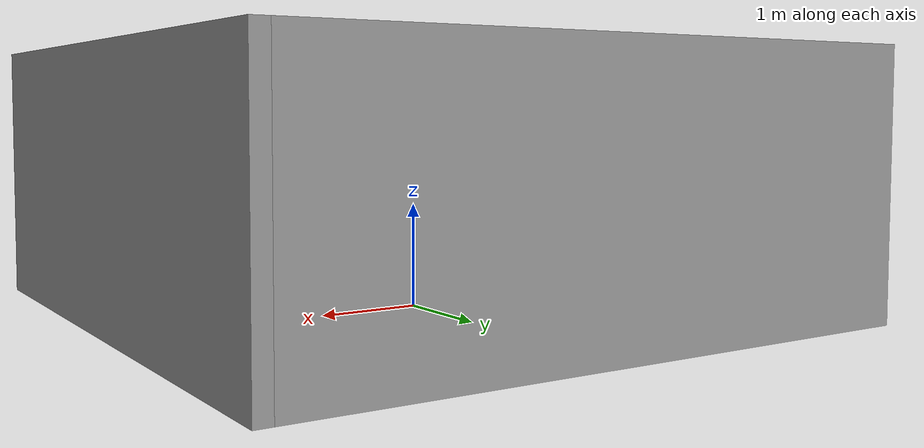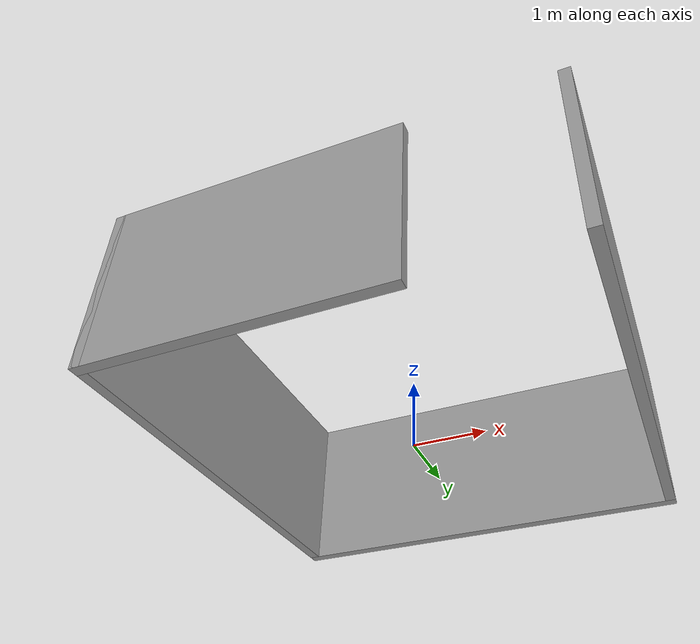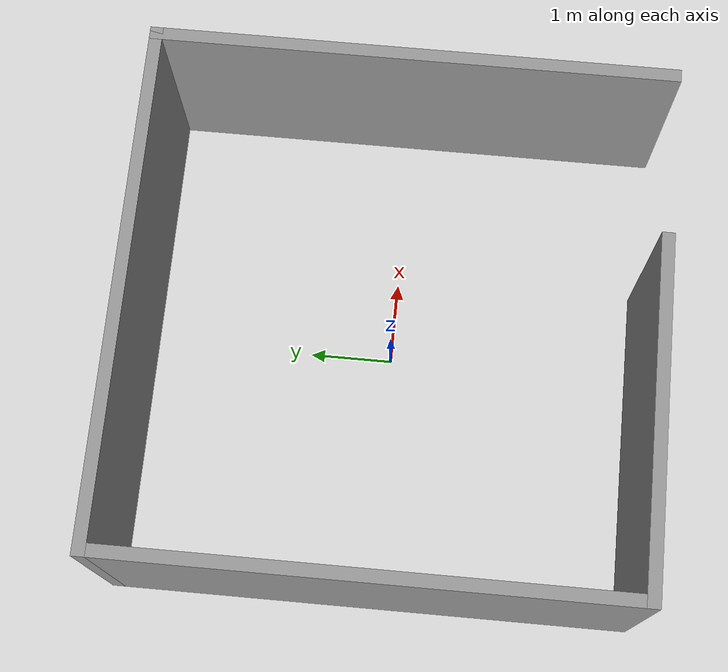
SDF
<?xml version='1.0'?>
<sdf version='1.6'>
  <model name='4w1d'>
    <pose frame=''>0 0 0 0 -0 0</pose>
    <link name='Wall_1'>
      <collision name='Wall_1_Collision'>
        <geometry>
          <box>
            <size>6.15 0.15 2.5</size>
          </box>
        </geometry>
        <pose frame=''>0 0 1.25 0 -0 0</pose>
      </collision>
      <visual name='Wall_1_Visual'>
        <pose frame=''>0 0 1.25 0 -0 0</pose>
        <geometry>
          <box>
            <size>6.15 0.15 2.5</size>
          </box>
        </geometry>
        <material>
          <script>
            <uri>file://media/materials/scripts/gazebo.material</uri>
            <name>Gazebo/Grey</name>
          </script>
          <ambient>1 1 1 1</ambient>
        </material>
        <meta>
          <layer>0</layer>
        </meta>
      </visual>
      <pose frame=''>0 3 0 0 -0 3.14159</pose>
    </link>
    <link name='Wall_3'>
      <collision name='Wall_3_Collision'>
        <geometry>
          <box>
            <size>4.15 0.15 2.5</size>
          </box>
        </geometry>
        <pose frame=''>0 0 1.25 0 -0 0</pose>
      </collision>
      <visual name='Wall_3_Visual'>
        <pose frame=''>0 0 1.25 0 -0 0</pose>
        <geometry>
          <box>
            <size>4.15 0.15 2.5</size>
          </box>
        </geometry>
        <material>
          <script>
            <uri>file://media/materials/scripts/gazebo.material</uri>
            <name>Gazebo/Grey</name>
          </script>
          <ambient>1 1 1 1</ambient>
        </material>
        <meta>
          <layer>0</layer>
        </meta>
      </visual>
      <pose frame=''>-1 -3 0 0 -0 0</pose>
    </link>
    <link name='Wall_5'>
      <collision name='Wall_5_Collision'>
        <geometry>
          <box>
            <size>6.15 0.15 2.5</size>
          </box>
        </geometry>
        <pose frame=''>0 0 1.25 0 -0 0</pose>
      </collision>
      <visual name='Wall_5_Visual'>
        <pose frame=''>0 0 1.25 0 -0 0</pose>
        <geometry>
          <box>
            <size>6.15 0.15 2.5</size>
          </box>
        </geometry>
        <material>
          <script>
            <uri>file://media/materials/scripts/gazebo.material</uri>
            <name>Gazebo/Grey</name>
          </script>
          <ambient>1 1 1 1</ambient>
        </material>
        <meta>
          <layer>0</layer>
        </meta>
      </visual>
      <pose frame=''>-3 0 0 0 -0 -1.5708</pose>
    </link>
    <link name='Wall_7'>
      <collision name='Wall_7_Collision'>
        <geometry>
          <box>
            <size>6.15 0.15 2.5</size>
          </box>
        </geometry>
        <pose frame=''>0 0 1.25 0 -0 0</pose>
      </collision>
      <visual name='Wall_7_Visual'>
        <pose frame=''>0 0 1.25 0 -0 0</pose>
        <geometry>
          <box>
            <size>6.15 0.15 2.5</size>
          </box>
        </geometry>
        <material>
          <script>
            <uri>file://media/materials/scripts/gazebo.material</uri>
            <name>Gazebo/Grey</name>
          </script>
          <ambient>1 1 1 1</ambient>
        </material>
        <meta>
          <layer>0</layer>
        </meta>
      </visual>
      <pose frame=''>3 0 0 0 -0 -1.5708</pose>
    </link>
    <static>1</static>
  </model>
</sdf>
